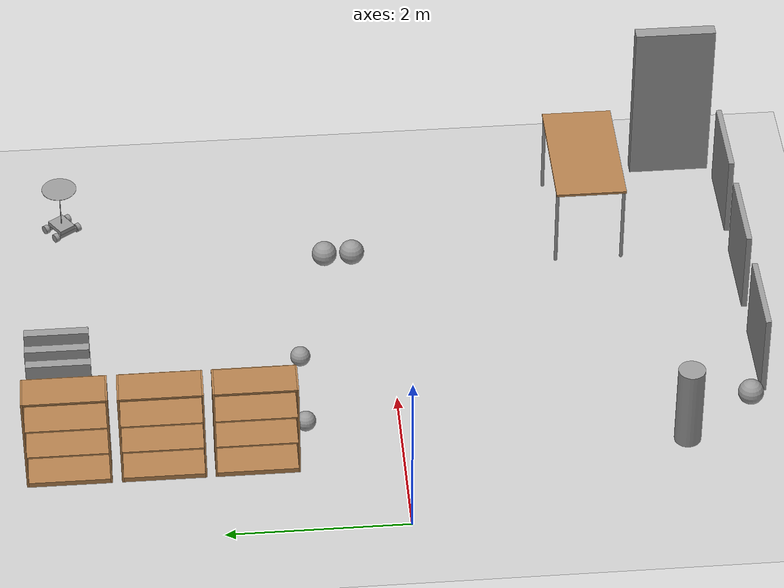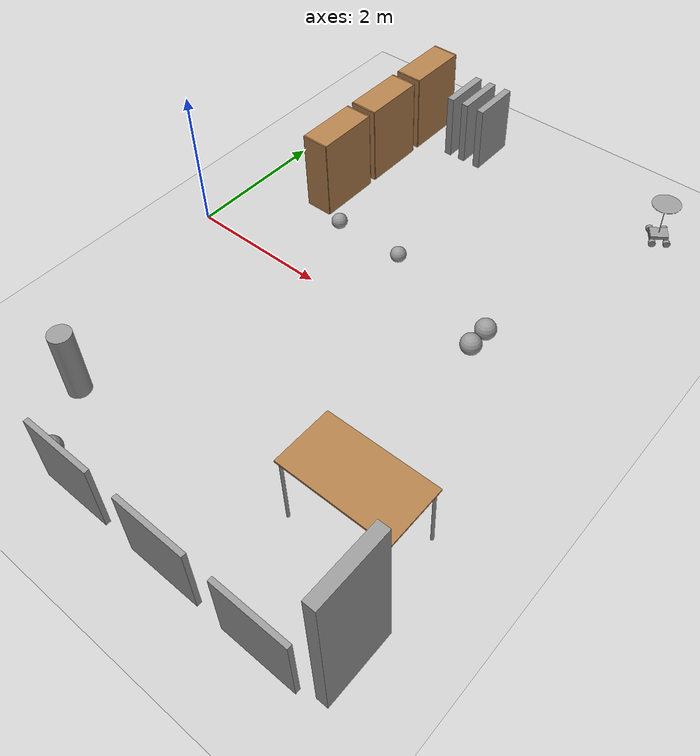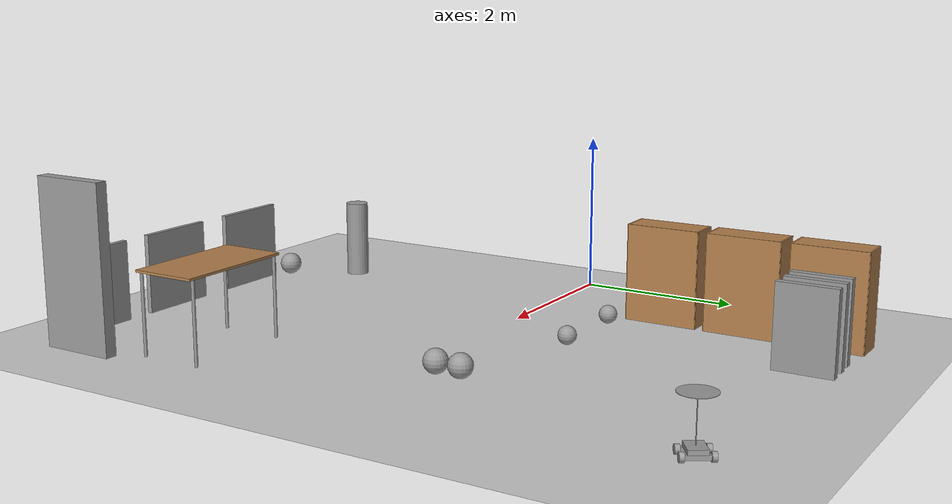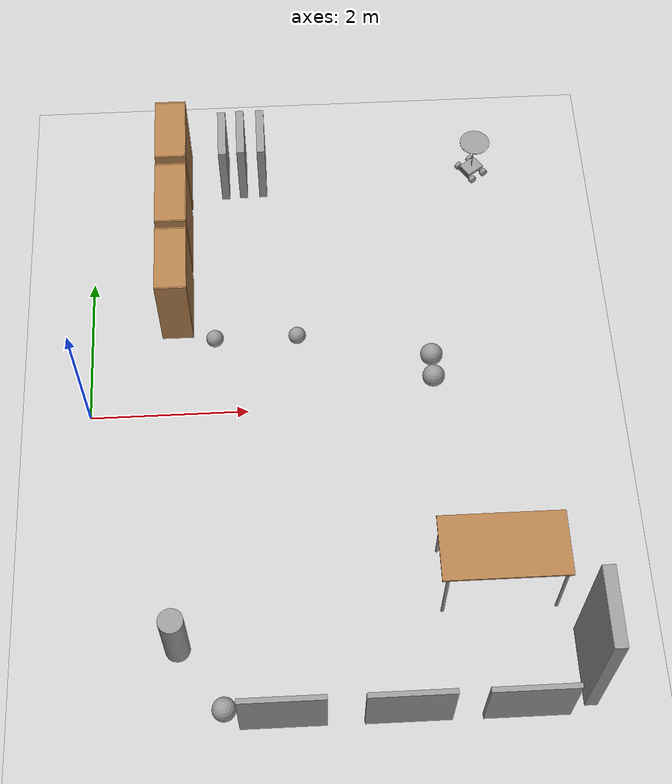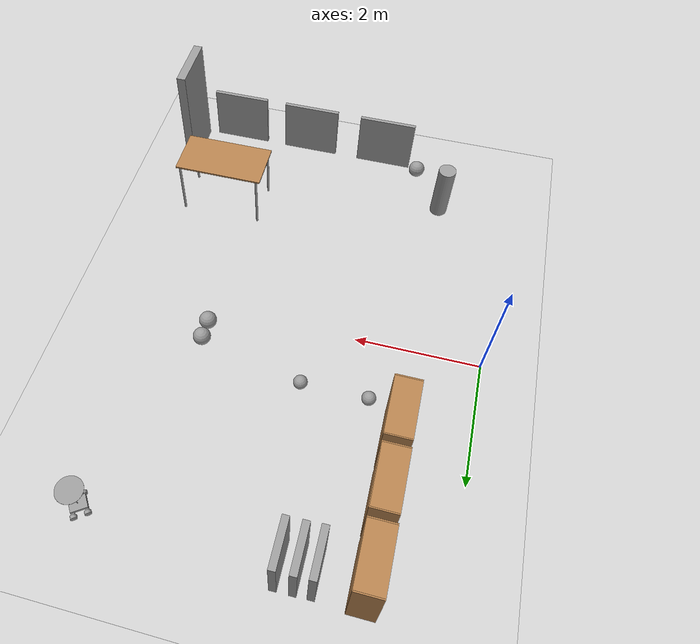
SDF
<sdf version="1.6">
 <world name="default">
  <model name="ground_plane">
   <static>1</static>
   <link name="link">
    <collision name="collision">
     <geometry><plane><normal>0 0 1</normal><size>100 100</size></plane></geometry>
     <surface><friction><ode><mu>100</mu><mu2>50</mu2></ode></friction></surface>
    </collision>
    <visual name="visual">
     <cast_shadows>0</cast_shadows>
     <geometry><plane><normal>0 0 1</normal><size>100 100</size></plane></geometry>
     <material>
      <script><uri>file://media/materials/scripts/gazebo.material</uri><name>Gazebo/Grey</name></script>
     </material>
    </visual>
   </link>
  </model>
  <model name="bookshelf">
   <static>1</static>
   <link name="link">
    <inertial><mass>1</mass></inertial>
    <collision name="back">
     <pose>0 0.005 0.6 0 -0 0</pose>
     <geometry><box><size>0.9 0.01 1.2</size></box></geometry>
    </collision>
    <visual name="visual1">
     <pose>0 0.005 0.6 0 -0 0</pose>
     <geometry><box><size>0.9 0.01 1.2</size></box></geometry>
     <material>
      <script><uri>file://media/materials/scripts/gazebo.material</uri><name>Gazebo/Wood</name></script>
     </material>
    </visual>
    <collision name="left_side">
     <pose>0.45 -0.195 0.6 0 -0 0</pose>
     <geometry><box><size>0.02 0.4 1.2</size></box></geometry>
    </collision>
    <visual name="visual2">
     <pose>0.45 -0.195 0.6 0 -0 0</pose>
     <geometry><box><size>0.02 0.4 1.2</size></box></geometry>
     <material>
      <script><uri>file://media/materials/scripts/gazebo.material</uri><name>Gazebo/Wood</name></script>
     </material>
    </visual>
    <collision name="right_side">
     <pose>-0.45 -0.195 0.6 0 -0 0</pose>
     <geometry><box><size>0.02 0.4 1.2</size></box></geometry>
    </collision>
    <visual name="visual3">
     <pose>-0.45 -0.195 0.6 0 -0 0</pose>
     <geometry><box><size>0.02 0.4 1.2</size></box></geometry>
     <material>
      <script><uri>file://media/materials/scripts/gazebo.material</uri><name>Gazebo/Wood</name></script>
     </material>
    </visual>
    <collision name="bottom">
     <pose>0 -0.195 0.03 0 -0 0</pose>
     <geometry><box><size>0.88 0.4 0.06</size></box></geometry>
    </collision>
    <visual name="visual4">
     <pose>0 -0.195 0.03 0 -0 0</pose>
     <geometry><box><size>0.88 0.4 0.06</size></box></geometry>
     <material>
      <script><uri>file://media/materials/scripts/gazebo.material</uri><name>Gazebo/Wood</name></script>
     </material>
    </visual>
    <collision name="top">
     <pose>0 -0.195 1.19 0 -0 0</pose>
     <geometry><box><size>0.88 0.4 0.02</size></box></geometry>
    </collision>
    <visual name="visual5">
     <pose>0 -0.195 1.19 0 -0 0</pose>
     <geometry><box><size>0.88 0.4 0.02</size></box></geometry>
     <material>
      <script><uri>file://media/materials/scripts/gazebo.material</uri><name>Gazebo/Wood</name></script>
     </material>
    </visual>
    <collision name="low_shelf">
     <pose>0 -0.195 0.43 0 -0 0</pose>
     <geometry><box><size>0.88 0.4 0.02</size></box></geometry>
    </collision>
    <visual name="visual6">
     <pose>0 -0.195 0.43 0 -0 0</pose>
     <geometry><box><size>0.88 0.4 0.02</size></box></geometry>
     <material>
      <script><uri>file://media/materials/scripts/gazebo.material</uri><name>Gazebo/Wood</name></script>
     </material>
    </visual>
    <collision name="high_shelf">
     <pose>0 -0.195 0.8 0 -0 0</pose>
     <geometry><box><size>0.88 0.4 0.02</size></box></geometry>
    </collision>
    <visual name="visual7">
     <pose>0 -0.195 0.8 0 -0 0</pose>
     <geometry><box><size>0.88 0.4 0.02</size></box></geometry>
     <material>
      <script><uri>file://media/materials/scripts/gazebo.material</uri><name>Gazebo/Wood</name></script>
     </material>
    </visual>
   </link>
   <pose>1.3 3.63049 0 0 0 -1.57119</pose>
  </model>
  <model name="bookshelf_clone">
   <static>1</static>
   <link name="link">
    <inertial><mass>1</mass></inertial>
    <collision name="back">
     <pose>0 0.005 0.6 0 -0 0</pose>
     <geometry><box><size>0.9 0.01 1.2</size></box></geometry>
    </collision>
    <visual name="visual1">
     <pose>0 0.005 0.6 0 -0 0</pose>
     <geometry><box><size>0.9 0.01 1.2</size></box></geometry>
     <material>
      <script><uri>file://media/materials/scripts/gazebo.material</uri><name>Gazebo/Wood</name></script>
     </material>
    </visual>
    <collision name="left_side">
     <pose>0.45 -0.195 0.6 0 -0 0</pose>
     <geometry><box><size>0.02 0.4 1.2</size></box></geometry>
    </collision>
    <visual name="visual2">
     <pose>0.45 -0.195 0.6 0 -0 0</pose>
     <geometry><box><size>0.02 0.4 1.2</size></box></geometry>
     <material>
      <script><uri>file://media/materials/scripts/gazebo.material</uri><name>Gazebo/Wood</name></script>
     </material>
    </visual>
    <collision name="right_side">
     <pose>-0.45 -0.195 0.6 0 -0 0</pose>
     <geometry><box><size>0.02 0.4 1.2</size></box></geometry>
    </collision>
    <visual name="visual3">
     <pose>-0.45 -0.195 0.6 0 -0 0</pose>
     <geometry><box><size>0.02 0.4 1.2</size></box></geometry>
     <material>
      <script><uri>file://media/materials/scripts/gazebo.material</uri><name>Gazebo/Wood</name></script>
     </material>
    </visual>
    <collision name="bottom">
     <pose>0 -0.195 0.03 0 -0 0</pose>
     <geometry><box><size>0.88 0.4 0.06</size></box></geometry>
    </collision>
    <visual name="visual4">
     <pose>0 -0.195 0.03 0 -0 0</pose>
     <geometry><box><size>0.88 0.4 0.06</size></box></geometry>
     <material>
      <script><uri>file://media/materials/scripts/gazebo.material</uri><name>Gazebo/Wood</name></script>
     </material>
    </visual>
    <collision name="top">
     <pose>0 -0.195 1.19 0 -0 0</pose>
     <geometry><box><size>0.88 0.4 0.02</size></box></geometry>
    </collision>
    <visual name="visual5">
     <pose>0 -0.195 1.19 0 -0 0</pose>
     <geometry><box><size>0.88 0.4 0.02</size></box></geometry>
     <material>
      <script><uri>file://media/materials/scripts/gazebo.material</uri><name>Gazebo/Wood</name></script>
     </material>
    </visual>
    <collision name="low_shelf">
     <pose>0 -0.195 0.43 0 -0 0</pose>
     <geometry><box><size>0.88 0.4 0.02</size></box></geometry>
    </collision>
    <visual name="visual6">
     <pose>0 -0.195 0.43 0 -0 0</pose>
     <geometry><box><size>0.88 0.4 0.02</size></box></geometry>
     <material>
      <script><uri>file://media/materials/scripts/gazebo.material</uri><name>Gazebo/Wood</name></script>
     </material>
    </visual>
    <collision name="high_shelf">
     <pose>0 -0.195 0.8 0 -0 0</pose>
     <geometry><box><size>0.88 0.4 0.02</size></box></geometry>
    </collision>
    <visual name="visual7">
     <pose>0 -0.195 0.8 0 -0 0</pose>
     <geometry><box><size>0.88 0.4 0.02</size></box></geometry>
     <material>
      <script><uri>file://media/materials/scripts/gazebo.material</uri><name>Gazebo/Wood</name></script>
     </material>
    </visual>
   </link>
   <pose>1.30004 2.60838 0 0 0 -1.57119</pose>
  </model>
  <model name="bookshelf_clone_0">
   <static>1</static>
   <link name="link">
    <inertial><mass>1</mass></inertial>
    <collision name="back">
     <pose>0 0.005 0.6 0 -0 0</pose>
     <geometry><box><size>0.9 0.01 1.2</size></box></geometry>
    </collision>
    <visual name="visual1">
     <pose>0 0.005 0.6 0 -0 0</pose>
     <geometry><box><size>0.9 0.01 1.2</size></box></geometry>
     <material>
      <script><uri>file://media/materials/scripts/gazebo.material</uri><name>Gazebo/Wood</name></script>
     </material>
    </visual>
    <collision name="left_side">
     <pose>0.45 -0.195 0.6 0 -0 0</pose>
     <geometry><box><size>0.02 0.4 1.2</size></box></geometry>
    </collision>
    <visual name="visual2">
     <pose>0.45 -0.195 0.6 0 -0 0</pose>
     <geometry><box><size>0.02 0.4 1.2</size></box></geometry>
     <material>
      <script><uri>file://media/materials/scripts/gazebo.material</uri><name>Gazebo/Wood</name></script>
     </material>
    </visual>
    <collision name="right_side">
     <pose>-0.45 -0.195 0.6 0 -0 0</pose>
     <geometry><box><size>0.02 0.4 1.2</size></box></geometry>
    </collision>
    <visual name="visual3">
     <pose>-0.45 -0.195 0.6 0 -0 0</pose>
     <geometry><box><size>0.02 0.4 1.2</size></box></geometry>
     <material>
      <script><uri>file://media/materials/scripts/gazebo.material</uri><name>Gazebo/Wood</name></script>
     </material>
    </visual>
    <collision name="bottom">
     <pose>0 -0.195 0.03 0 -0 0</pose>
     <geometry><box><size>0.88 0.4 0.06</size></box></geometry>
    </collision>
    <visual name="visual4">
     <pose>0 -0.195 0.03 0 -0 0</pose>
     <geometry><box><size>0.88 0.4 0.06</size></box></geometry>
     <material>
      <script><uri>file://media/materials/scripts/gazebo.material</uri><name>Gazebo/Wood</name></script>
     </material>
    </visual>
    <collision name="top">
     <pose>0 -0.195 1.19 0 -0 0</pose>
     <geometry><box><size>0.88 0.4 0.02</size></box></geometry>
    </collision>
    <visual name="visual5">
     <pose>0 -0.195 1.19 0 -0 0</pose>
     <geometry><box><size>0.88 0.4 0.02</size></box></geometry>
     <material>
      <script><uri>file://media/materials/scripts/gazebo.material</uri><name>Gazebo/Wood</name></script>
     </material>
    </visual>
    <collision name="low_shelf">
     <pose>0 -0.195 0.43 0 -0 0</pose>
     <geometry><box><size>0.88 0.4 0.02</size></box></geometry>
    </collision>
    <visual name="visual6">
     <pose>0 -0.195 0.43 0 -0 0</pose>
     <geometry><box><size>0.88 0.4 0.02</size></box></geometry>
     <material>
      <script><uri>file://media/materials/scripts/gazebo.material</uri><name>Gazebo/Wood</name></script>
     </material>
    </visual>
    <collision name="high_shelf">
     <pose>0 -0.195 0.8 0 -0 0</pose>
     <geometry><box><size>0.88 0.4 0.02</size></box></geometry>
    </collision>
    <visual name="visual7">
     <pose>0 -0.195 0.8 0 -0 0</pose>
     <geometry><box><size>0.88 0.4 0.02</size></box></geometry>
     <material>
      <script><uri>file://media/materials/scripts/gazebo.material</uri><name>Gazebo/Wood</name></script>
     </material>
    </visual>
   </link>
   <pose>1.30003 1.59548 0 0 0 -1.57119</pose>
  </model>
  <model name="table_clone">
   <static>1</static>
   <link name="link">
    <collision name="surface">
     <pose>0 0 1 0 -0 0</pose>
     <geometry><box><size>1.5 0.8 0.03</size></box></geometry>
     <surface><friction><ode><mu>0.6</mu><mu2>0.6</mu2></ode></friction></surface>
    </collision>
    <visual name="visual1">
     <pose>0 0 1 0 -0 0</pose>
     <geometry><box><size>1.5 0.8 0.03</size></box></geometry>
     <material>
      <script><uri>file://media/materials/scripts/gazebo.material</uri><name>Gazebo/Wood</name></script>
     </material>
    </visual>
    <collision name="front_left_leg">
     <pose>0.68 0.38 0.5 0 -0 0</pose>
     <geometry><cylinder><radius>0.02</radius><length>1</length></cylinder></geometry>
    </collision>
    <visual name="front_left_leg">
     <pose>0.68 0.38 0.5 0 -0 0</pose>
     <geometry><cylinder><radius>0.02</radius><length>1</length></cylinder></geometry>
     <material>
      <script><uri>file://media/materials/scripts/gazebo.material</uri><name>Gazebo/Grey</name></script>
     </material>
    </visual>
    <collision name="front_right_leg">
     <pose>0.68 -0.38 0.5 0 -0 0</pose>
     <geometry><cylinder><radius>0.02</radius><length>1</length></cylinder></geometry>
    </collision>
    <visual name="front_right_leg">
     <pose>0.68 -0.38 0.5 0 -0 0</pose>
     <geometry><cylinder><radius>0.02</radius><length>1</length></cylinder></geometry>
     <material>
      <script><uri>file://media/materials/scripts/gazebo.material</uri><name>Gazebo/Grey</name></script>
     </material>
    </visual>
    <collision name="back_right_leg">
     <pose>-0.68 -0.38 0.5 0 -0 0</pose>
     <geometry><cylinder><radius>0.02</radius><length>1</length></cylinder></geometry>
    </collision>
    <visual name="back_right_leg">
     <pose>-0.68 -0.38 0.5 0 -0 0</pose>
     <geometry><cylinder><radius>0.02</radius><length>1</length></cylinder></geometry>
     <material>
      <script><uri>file://media/materials/scripts/gazebo.material</uri><name>Gazebo/Grey</name></script>
     </material>
    </visual>
    <collision name="back_left_leg">
     <pose>-0.68 0.38 0.5 0 -0 0</pose>
     <geometry><cylinder><radius>0.02</radius><length>1</length></cylinder></geometry>
    </collision>
    <visual name="back_left_leg">
     <pose>-0.68 0.38 0.5 0 -0 0</pose>
     <geometry><cylinder><radius>0.02</radius><length>1</length></cylinder></geometry>
     <material>
      <script><uri>file://media/materials/scripts/gazebo.material</uri><name>Gazebo/Grey</name></script>
     </material>
    </visual>
   </link>
   <pose>4.9 -2.4 0 0 -0 0</pose>
  </model>
  <model name="carry-o-matic_0">
   <link name="link_0">
    <pose>0.1 -0 -0.049667 0 -0 0</pose>
    <inertial>
     <mass>1</mass>
     <inertia>
      <ixx>0.166667</ixx>
      <ixy>0</ixy>
      <ixz>0</ixz>
      <iyy>0.166667</iyy>
      <iyz>0</iyz>
      <izz>0.166667</izz>
     </inertia>
    </inertial>
    <visual name="visual">
     <geometry><box><size>0.05 0.25 0.05</size></box></geometry>
     <material>
      <lighting>1</lighting>
      <script><uri>file://media/materials/scripts/gazebo.material</uri><name>Gazebo/Grey</name></script>
      <ambient>0.3 0.3 0.3 1</ambient>
      <diffuse>0.7 0.7 0.7 1</diffuse>
      <specular>0.01 0.01 0.01 1</specular>
      <emissive>0 0 0 1</emissive>
      <shader type="vertex"><normal_map>__default__</normal_map></shader>
     </material>
    </visual>
    <collision name="collision">
     <geometry><box><size>0.05 0.25 0.05</size></box></geometry>
     <surface>
      <friction>
       <ode><mu>1</mu><mu2>1</mu2><fdir1>0 0 0</fdir1><slip1>0</slip1><slip2>0</slip2></ode>
       <torsional>
        <coefficient>1</coefficient>
        <patch_radius>0</patch_radius>
        <surface_radius>0</surface_radius>
        <use_patch_radius>1</use_patch_radius>
        <ode><slip>0</slip></ode>
       </torsional>
      </friction>
      <bounce><restitution_coefficient>0</restitution_coefficient><threshold>1e+06</threshold></bounce>
      <contact>
       <collide_without_contact>0</collide_without_contact>
       <collide_without_contact_bitmask>1</collide_without_contact_bitmask>
       <collide_bitmask>1</collide_bitmask>
       <ode>
        <soft_cfm>0</soft_cfm>
        <soft_erp>0.2</soft_erp>
        <kp>1e+13</kp>
        <kd>1</kd>
        <max_vel>0.01</max_vel>
        <min_depth>0</min_depth>
       </ode>
       <bullet>
        <split_impulse>1</split_impulse>
        <split_impulse_penetration_threshold>-0.01</split_impulse_penetration_threshold>
        <soft_cfm>0</soft_cfm>
        <soft_erp>0.2</soft_erp>
        <kp>1e+13</kp>
        <kd>1</kd>
       </bullet>
      </contact>
     </surface>
    </collision>
   </link>
   <link name="link_0_clone">
    <pose>-0.1 -0 -0.049667 0 -0 0</pose>
    <inertial>
     <mass>1</mass>
     <inertia>
      <ixx>0.166667</ixx>
      <ixy>0</ixy>
      <ixz>0</ixz>
      <iyy>0.166667</iyy>
      <iyz>0</iyz>
      <izz>0.166667</izz>
     </inertia>
    </inertial>
    <visual name="visual">
     <geometry><box><size>0.05 0.25 0.05</size></box></geometry>
     <material>
      <lighting>1</lighting>
      <script><uri>file://media/materials/scripts/gazebo.material</uri><name>Gazebo/Grey</name></script>
      <ambient>0.3 0.3 0.3 1</ambient>
      <diffuse>0.7 0.7 0.7 1</diffuse>
      <specular>0.01 0.01 0.01 1</specular>
      <emissive>0 0 0 1</emissive>
      <shader type="vertex"><normal_map>__default__</normal_map></shader>
     </material>
    </visual>
    <collision name="collision">
     <geometry><box><size>0.05 0.25 0.05</size></box></geometry>
     <surface>
      <friction>
       <ode><mu>1</mu><mu2>1</mu2><fdir1>0 0 0</fdir1><slip1>0</slip1><slip2>0</slip2></ode>
       <torsional>
        <coefficient>1</coefficient>
        <patch_radius>0</patch_radius>
        <surface_radius>0</surface_radius>
        <use_patch_radius>1</use_patch_radius>
        <ode><slip>0</slip></ode>
       </torsional>
      </friction>
      <bounce><restitution_coefficient>0</restitution_coefficient><threshold>1e+06</threshold></bounce>
      <contact>
       <collide_without_contact>0</collide_without_contact>
       <collide_without_contact_bitmask>1</collide_without_contact_bitmask>
       <collide_bitmask>1</collide_bitmask>
       <ode>
        <soft_cfm>0</soft_cfm>
        <soft_erp>0.2</soft_erp>
        <kp>1e+13</kp>
        <kd>1</kd>
        <max_vel>0.01</max_vel>
        <min_depth>0</min_depth>
       </ode>
       <bullet>
        <split_impulse>1</split_impulse>
        <split_impulse_penetration_threshold>-0.01</split_impulse_penetration_threshold>
        <soft_cfm>0</soft_cfm>
        <soft_erp>0.2</soft_erp>
        <kp>1e+13</kp>
        <kd>1</kd>
       </bullet>
      </contact>
     </surface>
    </collision>
   </link>
   <link name="link_1">
    <pose>0.1 -0.150013 -0.049667 1.5707 -0 0</pose>
    <inertial>
     <mass>1</mass>
     <inertia><ixx>0.145833</ixx><ixy>0</ixy><ixz>0</ixz><iyy>0.145833</iyy><iyz>0</iyz><izz>0.125</izz></inertia>
    </inertial>
    <visual name="visual">
     <geometry><cylinder><radius>0.05</radius><length>0.05</length></cylinder></geometry>
     <material>
      <lighting>1</lighting>
      <script><uri>file://media/materials/scripts/gazebo.material</uri><name>Gazebo/Grey</name></script>
      <ambient>0.3 0.3 0.3 1</ambient>
      <diffuse>0.7 0.7 0.7 1</diffuse>
      <specular>0.01 0.01 0.01 1</specular>
      <emissive>0 0 0 1</emissive>
      <shader type="vertex"><normal_map>__default__</normal_map></shader>
     </material>
    </visual>
    <collision name="collision">
     <geometry><cylinder><radius>0.05</radius><length>0.05</length></cylinder></geometry>
     <surface>
      <friction>
       <ode><mu>1</mu><mu2>1</mu2><fdir1>0 0 0</fdir1><slip1>0</slip1><slip2>0</slip2></ode>
       <torsional>
        <coefficient>1</coefficient>
        <patch_radius>0</patch_radius>
        <surface_radius>0</surface_radius>
        <use_patch_radius>1</use_patch_radius>
        <ode><slip>0</slip></ode>
       </torsional>
      </friction>
      <bounce><restitution_coefficient>0</restitution_coefficient><threshold>1e+06</threshold></bounce>
      <contact>
       <collide_without_contact>0</collide_without_contact>
       <collide_without_contact_bitmask>1</collide_without_contact_bitmask>
       <collide_bitmask>1</collide_bitmask>
       <ode>
        <soft_cfm>0</soft_cfm>
        <soft_erp>0.2</soft_erp>
        <kp>1e+13</kp>
        <kd>1</kd>
        <max_vel>0.01</max_vel>
        <min_depth>0</min_depth>
       </ode>
       <bullet>
        <split_impulse>1</split_impulse>
        <split_impulse_penetration_threshold>-0.01</split_impulse_penetration_threshold>
        <soft_cfm>0</soft_cfm>
        <soft_erp>0.2</soft_erp>
        <kp>1e+13</kp>
        <kd>1</kd>
       </bullet>
      </contact>
     </surface>
    </collision>
   </link>
   <link name="link_1_clone">
    <pose>0.1 0.15 -0.049667 1.5707 -0 0</pose>
    <inertial>
     <mass>1</mass>
     <inertia><ixx>0.145833</ixx><ixy>0</ixy><ixz>0</ixz><iyy>0.145833</iyy><iyz>0</iyz><izz>0.125</izz></inertia>
    </inertial>
    <visual name="visual">
     <geometry><cylinder><radius>0.05</radius><length>0.05</length></cylinder></geometry>
     <material>
      <lighting>1</lighting>
      <script><uri>file://media/materials/scripts/gazebo.material</uri><name>Gazebo/Grey</name></script>
      <ambient>0.3 0.3 0.3 1</ambient>
      <diffuse>0.7 0.7 0.7 1</diffuse>
      <specular>0.01 0.01 0.01 1</specular>
      <emissive>0 0 0 1</emissive>
      <shader type="vertex"><normal_map>__default__</normal_map></shader>
     </material>
    </visual>
    <collision name="collision">
     <geometry><cylinder><radius>0.05</radius><length>0.05</length></cylinder></geometry>
     <surface>
      <friction>
       <ode><mu>1</mu><mu2>1</mu2><fdir1>0 0 0</fdir1><slip1>0</slip1><slip2>0</slip2></ode>
       <torsional>
        <coefficient>1</coefficient>
        <patch_radius>0</patch_radius>
        <surface_radius>0</surface_radius>
        <use_patch_radius>1</use_patch_radius>
        <ode><slip>0</slip></ode>
       </torsional>
      </friction>
      <bounce><restitution_coefficient>0</restitution_coefficient><threshold>1e+06</threshold></bounce>
      <contact>
       <collide_without_contact>0</collide_without_contact>
       <collide_without_contact_bitmask>1</collide_without_contact_bitmask>
       <collide_bitmask>1</collide_bitmask>
       <ode>
        <soft_cfm>0</soft_cfm>
        <soft_erp>0.2</soft_erp>
        <kp>1e+13</kp>
        <kd>1</kd>
        <max_vel>0.01</max_vel>
        <min_depth>0</min_depth>
       </ode>
       <bullet>
        <split_impulse>1</split_impulse>
        <split_impulse_penetration_threshold>-0.01</split_impulse_penetration_threshold>
        <soft_cfm>0</soft_cfm>
        <soft_erp>0.2</soft_erp>
        <kp>1e+13</kp>
        <kd>1</kd>
       </bullet>
      </contact>
     </surface>
    </collision>
   </link>
   <link name="link_1_clone_0">
    <pose>-0.1 -0.150005 -0.049667 1.5707 -0 0</pose>
    <inertial>
     <mass>1</mass>
     <inertia><ixx>0.145833</ixx><ixy>0</ixy><ixz>0</ixz><iyy>0.145833</iyy><iyz>0</iyz><izz>0.125</izz></inertia>
    </inertial>
    <visual name="visual">
     <geometry><cylinder><radius>0.05</radius><length>0.05</length></cylinder></geometry>
     <material>
      <lighting>1</lighting>
      <script><uri>file://media/materials/scripts/gazebo.material</uri><name>Gazebo/Grey</name></script>
      <ambient>0.3 0.3 0.3 1</ambient>
      <diffuse>0.7 0.7 0.7 1</diffuse>
      <specular>0.01 0.01 0.01 1</specular>
      <emissive>0 0 0 1</emissive>
      <shader type="vertex"><normal_map>__default__</normal_map></shader>
     </material>
    </visual>
    <collision name="collision">
     <geometry><cylinder><radius>0.05</radius><length>0.05</length></cylinder></geometry>
     <surface>
      <friction>
       <ode><mu>1</mu><mu2>1</mu2><fdir1>0 0 0</fdir1><slip1>0</slip1><slip2>0</slip2></ode>
       <torsional>
        <coefficient>1</coefficient>
        <patch_radius>0</patch_radius>
        <surface_radius>0</surface_radius>
        <use_patch_radius>1</use_patch_radius>
        <ode><slip>0</slip></ode>
       </torsional>
      </friction>
      <bounce><restitution_coefficient>0</restitution_coefficient><threshold>1e+06</threshold></bounce>
      <contact>
       <collide_without_contact>0</collide_without_contact>
       <collide_without_contact_bitmask>1</collide_without_contact_bitmask>
       <collide_bitmask>1</collide_bitmask>
       <ode>
        <soft_cfm>0</soft_cfm>
        <soft_erp>0.2</soft_erp>
        <kp>1e+13</kp>
        <kd>1</kd>
        <max_vel>0.01</max_vel>
        <min_depth>0</min_depth>
       </ode>
       <bullet>
        <split_impulse>1</split_impulse>
        <split_impulse_penetration_threshold>-0.01</split_impulse_penetration_threshold>
        <soft_cfm>0</soft_cfm>
        <soft_erp>0.2</soft_erp>
        <kp>1e+13</kp>
        <kd>1</kd>
       </bullet>
      </contact>
     </surface>
    </collision>
   </link>
   <link name="link_1_clone_1">
    <pose>-0.1 0.150005 -0.049667 1.5707 -0 0</pose>
    <inertial>
     <mass>1</mass>
     <inertia><ixx>0.145833</ixx><ixy>0</ixy><ixz>0</ixz><iyy>0.145833</iyy><iyz>0</iyz><izz>0.125</izz></inertia>
    </inertial>
    <visual name="visual">
     <geometry><cylinder><radius>0.05</radius><length>0.05</length></cylinder></geometry>
     <material>
      <lighting>1</lighting>
      <script><uri>file://media/materials/scripts/gazebo.material</uri><name>Gazebo/Grey</name></script>
      <ambient>0.3 0.3 0.3 1</ambient>
      <diffuse>0.7 0.7 0.7 1</diffuse>
      <specular>0.01 0.01 0.01 1</specular>
      <emissive>0 0 0 1</emissive>
      <shader type="vertex"><normal_map>__default__</normal_map></shader>
     </material>
    </visual>
    <collision name="collision">
     <geometry><cylinder><radius>0.05</radius><length>0.05</length></cylinder></geometry>
     <surface>
      <friction>
       <ode><mu>1</mu><mu2>1</mu2><fdir1>0 0 0</fdir1><slip1>0</slip1><slip2>0</slip2></ode>
       <torsional>
        <coefficient>1</coefficient>
        <patch_radius>0</patch_radius>
        <surface_radius>0</surface_radius>
        <use_patch_radius>1</use_patch_radius>
        <ode><slip>0</slip></ode>
       </torsional>
      </friction>
      <bounce><restitution_coefficient>0</restitution_coefficient><threshold>1e+06</threshold></bounce>
      <contact>
       <collide_without_contact>0</collide_without_contact>
       <collide_without_contact_bitmask>1</collide_without_contact_bitmask>
       <collide_bitmask>1</collide_bitmask>
       <ode>
        <soft_cfm>0</soft_cfm>
        <soft_erp>0.2</soft_erp>
        <kp>1e+13</kp>
        <kd>1</kd>
        <max_vel>0.01</max_vel>
        <min_depth>0</min_depth>
       </ode>
       <bullet>
        <split_impulse>1</split_impulse>
        <split_impulse_penetration_threshold>-0.01</split_impulse_penetration_threshold>
        <soft_cfm>0</soft_cfm>
        <soft_erp>0.2</soft_erp>
        <kp>1e+13</kp>
        <kd>1</kd>
       </bullet>
      </contact>
     </surface>
    </collision>
   </link>
   <link name="link_2">
    <pose>0 -0 0.000333 0 -0 0</pose>
    <inertial>
     <mass>1</mass>
     <inertia>
      <ixx>0.166667</ixx>
      <ixy>0</ixy>
      <ixz>0</ixz>
      <iyy>0.166667</iyy>
      <iyz>0</iyz>
      <izz>0.166667</izz>
     </inertia>
    </inertial>
    <visual name="visual">
     <geometry><box><size>0.25 0.2 0.05</size></box></geometry>
     <material>
      <lighting>1</lighting>
      <script><uri>file://media/materials/scripts/gazebo.material</uri><name>Gazebo/Grey</name></script>
      <ambient>0.3 0.3 0.3 1</ambient>
      <diffuse>0.7 0.7 0.7 1</diffuse>
      <specular>0.01 0.01 0.01 1</specular>
      <emissive>0 0 0 1</emissive>
      <shader type="vertex"><normal_map>__default__</normal_map></shader>
     </material>
    </visual>
    <collision name="collision">
     <geometry><box><size>0.25 0.2 0.05</size></box></geometry>
     <surface>
      <friction>
       <ode><mu>1</mu><mu2>1</mu2><fdir1>0 0 0</fdir1><slip1>0</slip1><slip2>0</slip2></ode>
       <torsional>
        <coefficient>1</coefficient>
        <patch_radius>0</patch_radius>
        <surface_radius>0</surface_radius>
        <use_patch_radius>1</use_patch_radius>
        <ode><slip>0</slip></ode>
       </torsional>
      </friction>
      <bounce><restitution_coefficient>0</restitution_coefficient><threshold>1e+06</threshold></bounce>
      <contact>
       <collide_without_contact>0</collide_without_contact>
       <collide_without_contact_bitmask>1</collide_without_contact_bitmask>
       <collide_bitmask>1</collide_bitmask>
       <ode>
        <soft_cfm>0</soft_cfm>
        <soft_erp>0.2</soft_erp>
        <kp>1e+13</kp>
        <kd>1</kd>
        <max_vel>0.01</max_vel>
        <min_depth>0</min_depth>
       </ode>
       <bullet>
        <split_impulse>1</split_impulse>
        <split_impulse_penetration_threshold>-0.01</split_impulse_penetration_threshold>
        <soft_cfm>0</soft_cfm>
        <soft_erp>0.2</soft_erp>
        <kp>1e+13</kp>
        <kd>1</kd>
       </bullet>
      </contact>
     </surface>
    </collision>
   </link>
   <link name="link_3">
    <pose>0 -2e-06 0.277476 0 -0 0</pose>
    <inertial>
     <mass>1</mass>
     <inertia><ixx>0.145833</ixx><ixy>0</ixy><ixz>0</ixz><iyy>0.145833</iyy><iyz>0</iyz><izz>0.125</izz></inertia>
    </inertial>
    <visual name="visual">
     <geometry><cylinder><radius>0.005</radius><length>0.5</length></cylinder></geometry>
     <material>
      <lighting>1</lighting>
      <script><uri>file://media/materials/scripts/gazebo.material</uri><name>Gazebo/Grey</name></script>
      <ambient>0.3 0.3 0.3 1</ambient>
      <diffuse>0.7 0.7 0.7 1</diffuse>
      <specular>0.01 0.01 0.01 1</specular>
      <emissive>0 0 0 1</emissive>
      <shader type="vertex"><normal_map>__default__</normal_map></shader>
     </material>
    </visual>
    <collision name="collision">
     <geometry><cylinder><radius>0.005</radius><length>0.5</length></cylinder></geometry>
     <surface>
      <friction>
       <ode><mu>1</mu><mu2>1</mu2><fdir1>0 0 0</fdir1><slip1>0</slip1><slip2>0</slip2></ode>
       <torsional>
        <coefficient>1</coefficient>
        <patch_radius>0</patch_radius>
        <surface_radius>0</surface_radius>
        <use_patch_radius>1</use_patch_radius>
        <ode><slip>0</slip></ode>
       </torsional>
      </friction>
      <bounce><restitution_coefficient>0</restitution_coefficient><threshold>1e+06</threshold></bounce>
      <contact>
       <collide_without_contact>0</collide_without_contact>
       <collide_without_contact_bitmask>1</collide_without_contact_bitmask>
       <collide_bitmask>1</collide_bitmask>
       <ode>
        <soft_cfm>0</soft_cfm>
        <soft_erp>0.2</soft_erp>
        <kp>1e+13</kp>
        <kd>1</kd>
        <max_vel>0.01</max_vel>
        <min_depth>0</min_depth>
       </ode>
       <bullet>
        <split_impulse>1</split_impulse>
        <split_impulse_penetration_threshold>-0.01</split_impulse_penetration_threshold>
        <soft_cfm>0</soft_cfm>
        <soft_erp>0.2</soft_erp>
        <kp>1e+13</kp>
        <kd>1</kd>
       </bullet>
      </contact>
     </surface>
    </collision>
   </link>
   <link name="link_4">
    <pose>0 -2e-06 0.534476 0 -0 0</pose>
    <inertial>
     <mass>1</mass>
     <inertia><ixx>0.145833</ixx><ixy>0</ixy><ixz>0</ixz><iyy>0.145833</iyy><iyz>0</iyz><izz>0.125</izz></inertia>
    </inertial>
    <visual name="visual">
     <geometry><cylinder><radius>0.2</radius><length>0.005</length></cylinder></geometry>
     <material>
      <lighting>1</lighting>
      <script><uri>file://media/materials/scripts/gazebo.material</uri><name>Gazebo/Grey</name></script>
      <ambient>0.3 0.3 0.3 1</ambient>
      <diffuse>0.7 0.7 0.7 1</diffuse>
      <specular>0.01 0.01 0.01 1</specular>
      <emissive>0 0 0 1</emissive>
      <shader type="vertex"><normal_map>__default__</normal_map></shader>
     </material>
    </visual>
    <collision name="collision">
     <geometry><cylinder><radius>0.2</radius><length>0.005</length></cylinder></geometry>
     <surface>
      <friction>
       <ode><mu>1</mu><mu2>1</mu2><fdir1>0 0 0</fdir1><slip1>0</slip1><slip2>0</slip2></ode>
       <torsional>
        <coefficient>1</coefficient>
        <patch_radius>0</patch_radius>
        <surface_radius>0</surface_radius>
        <use_patch_radius>1</use_patch_radius>
        <ode><slip>0</slip></ode>
       </torsional>
      </friction>
      <bounce><restitution_coefficient>0</restitution_coefficient><threshold>1e+06</threshold></bounce>
      <contact>
       <collide_without_contact>0</collide_without_contact>
       <collide_without_contact_bitmask>1</collide_without_contact_bitmask>
       <collide_bitmask>1</collide_bitmask>
       <ode>
        <soft_cfm>0</soft_cfm>
        <soft_erp>0.2</soft_erp>
        <kp>1e+13</kp>
        <kd>1</kd>
        <max_vel>0.01</max_vel>
        <min_depth>0</min_depth>
       </ode>
       <bullet>
        <split_impulse>1</split_impulse>
        <split_impulse_penetration_threshold>-0.01</split_impulse_penetration_threshold>
        <soft_cfm>0</soft_cfm>
        <soft_erp>0.2</soft_erp>
        <kp>1e+13</kp>
        <kd>1</kd>
       </bullet>
      </contact>
     </surface>
    </collision>
   </link>
   <joint name="link_0_JOINT_0" type="revolute">
    <parent>link_0</parent>
    <child>link_1</child>
    <axis>
     <xyz>0 0 1</xyz>
     <use_parent_model_frame>0</use_parent_model_frame>
     <limit>
      <lower>-1.79769e+308</lower>
      <upper>1.79769e+308</upper>
      <effort>-1</effort>
      <velocity>-1</velocity>
     </limit>
     <dynamics>
      <spring_reference>0</spring_reference>
      <spring_stiffness>0</spring_stiffness>
      <damping>0</damping>
     </dynamics>
    </axis>
    <physics>
     <ode><limit><cfm>0</cfm><erp>0.2</erp></limit><suspension><cfm>0</cfm><erp>0.2</erp></suspension></ode>
    </physics>
   </joint>
   <joint name="link_0_JOINT_1" type="revolute">
    <parent>link_0</parent>
    <child>link_1_clone</child>
    <axis>
     <xyz>0 0 1</xyz>
     <use_parent_model_frame>0</use_parent_model_frame>
     <limit>
      <lower>-1.79769e+308</lower>
      <upper>1.79769e+308</upper>
      <effort>-1</effort>
      <velocity>-1</velocity>
     </limit>
     <dynamics>
      <spring_reference>0</spring_reference>
      <spring_stiffness>0</spring_stiffness>
      <damping>0</damping>
     </dynamics>
    </axis>
    <physics>
     <ode><limit><cfm>0</cfm><erp>0.2</erp></limit><suspension><cfm>0</cfm><erp>0.2</erp></suspension></ode>
    </physics>
   </joint>
   <joint name="link_0_clone_JOINT_2" type="revolute">
    <parent>link_0_clone</parent>
    <child>link_1_clone_0</child>
    <axis>
     <xyz>0 0 1</xyz>
     <use_parent_model_frame>0</use_parent_model_frame>
     <limit>
      <lower>-1.79769e+308</lower>
      <upper>1.79769e+308</upper>
      <effort>-1</effort>
      <velocity>-1</velocity>
     </limit>
     <dynamics>
      <spring_reference>0</spring_reference>
      <spring_stiffness>0</spring_stiffness>
      <damping>0</damping>
     </dynamics>
    </axis>
    <physics>
     <ode><limit><cfm>0</cfm><erp>0.2</erp></limit><suspension><cfm>0</cfm><erp>0.2</erp></suspension></ode>
    </physics>
   </joint>
   <joint name="link_0_clone_JOINT_3" type="revolute">
    <parent>link_0_clone</parent>
    <child>link_1_clone_1</child>
    <axis>
     <xyz>0 0 1</xyz>
     <use_parent_model_frame>0</use_parent_model_frame>
     <limit>
      <lower>-1.79769e+308</lower>
      <upper>1.79769e+308</upper>
      <effort>-1</effort>
      <velocity>-1</velocity>
     </limit>
     <dynamics>
      <spring_reference>0</spring_reference>
      <spring_stiffness>0</spring_stiffness>
      <damping>0</damping>
     </dynamics>
    </axis>
    <physics>
     <ode><limit><cfm>0</cfm><erp>0.2</erp></limit><suspension><cfm>0</cfm><erp>0.2</erp></suspension></ode>
    </physics>
   </joint>
   <joint name="link_2_JOINT_4" type="fixed">
    <parent>link_2</parent>
    <child>link_0_clone</child>
    <physics>
     <ode><limit><cfm>0</cfm><erp>0.2</erp></limit><suspension><cfm>0</cfm><erp>0.2</erp></suspension></ode>
    </physics>
   </joint>
   <joint name="link_2_JOINT_5" type="fixed">
    <parent>link_2</parent>
    <child>link_0</child>
    <physics>
     <ode><limit><cfm>0</cfm><erp>0.2</erp></limit><suspension><cfm>0</cfm><erp>0.2</erp></suspension></ode>
    </physics>
   </joint>
   <joint name="link_2_JOINT_6" type="fixed">
    <parent>link_2</parent>
    <child>link_3</child>
    <physics>
     <ode><limit><cfm>0</cfm><erp>0.2</erp></limit><suspension><cfm>0</cfm><erp>0.2</erp></suspension></ode>
    </physics>
   </joint>
   <joint name="link_3_JOINT_7" type="fixed">
    <parent>link_3</parent>
    <child>link_4</child>
    <physics>
     <ode><limit><cfm>0</cfm><erp>0.2</erp></limit><suspension><cfm>0</cfm><erp>0.2</erp></suspension></ode>
    </physics>
   </joint>
   <static>0</static>
   <pose>5.18957 3.6528 0.09967 4e-06 2e-06 0.602781</pose>
  </model>
  <model name="door">
   <pose>5.81718 -3.54265 0 0 -0 0</pose>
   <link name="Wall_0">
    <collision name="Wall_0_Collision">
     <geometry><box><size>0.925 0.15 2</size></box></geometry>
     <pose>0 0 1 0 -0 0</pose>
    </collision>
    <visual name="Wall_0_Visual">
     <pose>0 0 1 0 -0 0</pose>
     <geometry><box><size>0.925 0.15 2</size></box></geometry>
     <material>
      <script><uri>file://media/materials/scripts/gazebo.material</uri><name>Gazebo/Grey</name></script>
      <ambient>1 1 1 1</ambient>
     </material>
     <meta><layer>0</layer></meta>
    </visual>
    <pose>0 0 0 0 -0 1.5708</pose>
   </link>
   <static>1</static>
  </model>
  <model name="unit_box_0_clone">
   <pose>3.72069 -4.06324 0.5 6e-06 -0 -2e-06</pose>
   <link name="link">
    <inertial>
     <mass>1</mass>
     <inertia>
      <ixx>0.166667</ixx>
      <ixy>0</ixy>
      <ixz>0</ixz>
      <iyy>0.166667</iyy>
      <iyz>0</iyz>
      <izz>0.166667</izz>
     </inertia>
    </inertial>
    <collision name="collision"><geometry><box><size>1 0.062572 1</size></box></geometry></collision>
    <visual name="visual">
     <geometry><box><size>1 0.062572 1</size></box></geometry>
     <material>
      <script><name>Gazebo/Grey</name><uri>file://media/materials/scripts/gazebo.material</uri></script>
     </material>
    </visual>
   </link>
  </model>
  <model name="unit_box_0_clone_clone">
   <pose>5.07134 -4.06871 0.5 -3e-06 -0 1e-06</pose>
   <link name="link">
    <inertial>
     <mass>1</mass>
     <inertia>
      <ixx>0.166667</ixx>
      <ixy>0</ixy>
      <ixz>0</ixz>
      <iyy>0.166667</iyy>
      <iyz>0</iyz>
      <izz>0.166667</izz>
     </inertia>
    </inertial>
    <collision name="collision"><geometry><box><size>1 0.062572 1</size></box></geometry></collision>
    <visual name="visual">
     <geometry><box><size>1 0.062572 1</size></box></geometry>
     <material>
      <script><name>Gazebo/Grey</name><uri>file://media/materials/scripts/gazebo.material</uri></script>
     </material>
    </visual>
   </link>
  </model>
  <model name="unit_box_0_clone_clone_0">
   <pose>2.29684 -4.05752 0.5 -3e-06 0 0</pose>
   <link name="link">
    <inertial>
     <mass>1</mass>
     <inertia>
      <ixx>0.166667</ixx>
      <ixy>0</ixy>
      <ixz>0</ixz>
      <iyy>0.166667</iyy>
      <iyz>0</iyz>
      <izz>0.166667</izz>
     </inertia>
    </inertial>
    <collision name="collision"><geometry><box><size>1 0.062572 1</size></box></geometry></collision>
    <visual name="visual">
     <geometry><box><size>1 0.062572 1</size></box></geometry>
     <material>
      <script><name>Gazebo/Grey</name><uri>file://media/materials/scripts/gazebo.material</uri></script>
     </material>
    </visual>
   </link>
  </model>
  <model name="unit_box">
   <pose>2.28414 3.7068 0.499991 0 -1.2e-05 6e-06</pose>
   <link name="link">
    <inertial>
     <mass>1</mass>
     <inertia>
      <ixx>0.166667</ixx>
      <ixy>0</ixy>
      <ixz>0</ixz>
      <iyy>0.166667</iyy>
      <iyz>0</iyz>
      <izz>0.166667</izz>
     </inertia>
    </inertial>
    <collision name="collision"><geometry><box><size>0.105011 0.705135 1</size></box></geometry></collision>
    <visual name="visual">
     <geometry><box><size>0.105011 0.705135 1</size></box></geometry>
     <material>
      <script><name>Gazebo/Grey</name><uri>file://media/materials/scripts/gazebo.material</uri></script>
     </material>
    </visual>
   </link>
  </model>
  <model name="unit_box_clone">
   <pose>1.77229 3.69221 0.5 0 -4e-06 -9e-06</pose>
   <link name="link">
    <inertial>
     <mass>1</mass>
     <inertia>
      <ixx>0.166667</ixx>
      <ixy>0</ixy>
      <ixz>0</ixz>
      <iyy>0.166667</iyy>
      <iyz>0</iyz>
      <izz>0.166667</izz>
     </inertia>
    </inertial>
    <collision name="collision"><geometry><box><size>0.105011 0.705135 1</size></box></geometry></collision>
    <visual name="visual">
     <geometry><box><size>0.105011 0.705135 1</size></box></geometry>
     <material>
      <script><name>Gazebo/Grey</name><uri>file://media/materials/scripts/gazebo.material</uri></script>
     </material>
    </visual>
   </link>
  </model>
  <model name="unit_box_clone_0">
   <pose>2.01639 3.70376 0.5 0 2e-06 9e-06</pose>
   <link name="link">
    <inertial>
     <mass>1</mass>
     <inertia>
      <ixx>0.166667</ixx>
      <ixy>0</ixy>
      <ixz>0</ixz>
      <iyy>0.166667</iyy>
      <iyz>0</iyz>
      <izz>0.166667</izz>
     </inertia>
    </inertial>
    <collision name="collision"><geometry><box><size>0.105011 0.705135 1</size></box></geometry></collision>
    <visual name="visual">
     <geometry><box><size>0.105011 0.705135 1</size></box></geometry>
     <material>
      <script><name>Gazebo/Grey</name><uri>file://media/materials/scripts/gazebo.material</uri></script>
     </material>
    </visual>
   </link>
  </model>
  <model name="unit_sphere">
   <pose>1.63002 -3.8873 0.143363 0 -0 0</pose>
   <link name="link">
    <inertial>
     <mass>1</mass>
     <inertia><ixx>0.1</ixx><ixy>0</ixy><ixz>0</ixz><iyy>0.1</iyy><iyz>0</iyz><izz>0.1</izz></inertia>
    </inertial>
    <collision name="collision"><geometry><sphere><radius>0.143364</radius></sphere></geometry></collision>
    <visual name="visual">
     <geometry><sphere><radius>0.143364</radius></sphere></geometry>
     <material>
      <script><name>Gazebo/Grey</name><uri>file://media/materials/scripts/gazebo.material</uri></script>
     </material>
    </visual>
   </link>
  </model>
  <model name="unit_sphere_clone">
   <pose>4.37493 0.644811 0.143363 0 -0 0</pose>
   <link name="link">
    <inertial>
     <mass>1</mass>
     <inertia><ixx>0.1</ixx><ixy>0</ixy><ixz>0</ixz><iyy>0.1</iyy><iyz>0</iyz><izz>0.1</izz></inertia>
    </inertial>
    <collision name="collision"><geometry><sphere><radius>0.143363</radius></sphere></geometry></collision>
    <visual name="visual">
     <geometry><sphere><radius>0.143363</radius></sphere></geometry>
     <material>
      <script><name>Gazebo/Grey</name><uri>file://media/materials/scripts/gazebo.material</uri></script>
     </material>
    </visual>
   </link>
  </model>
  <model name="unit_sphere_clone_0">
   <pose>4.37594 0.328568 0.143363 0 -0 0</pose>
   <link name="link">
    <inertial>
     <mass>1</mass>
     <inertia><ixx>0.1</ixx><ixy>0</ixy><ixz>0</ixz><iyy>0.1</iyy><iyz>0</iyz><izz>0.1</izz></inertia>
    </inertial>
    <collision name="collision"><geometry><sphere><radius>0.143363</radius></sphere></geometry></collision>
    <visual name="visual">
     <geometry><sphere><radius>0.143363</radius></sphere></geometry>
     <material>
      <script><name>Gazebo/Grey</name><uri>file://media/materials/scripts/gazebo.material</uri></script>
     </material>
    </visual>
   </link>
  </model>
  <model name="unit_cylinder_clone_2">
   <pose>1.09577 -3.11102 0.499998 0 -0 0</pose>
   <link name="link">
    <inertial>
     <mass>1</mass>
     <inertia><ixx>0.145833</ixx><ixy>0</ixy><ixz>0</ixz><iyy>0.145833</iyy><iyz>0</iyz><izz>0.125</izz></inertia>
    </inertial>
    <collision name="collision">
     <geometry><cylinder><radius>0.148325</radius><length>1</length></cylinder></geometry>
    </collision>
    <visual name="visual">
     <geometry><cylinder><radius>0.148325</radius><length>1</length></cylinder></geometry>
     <material>
      <script><name>Gazebo/Grey</name><uri>file://media/materials/scripts/gazebo.material</uri></script>
     </material>
    </visual>
   </link>
  </model>
  <model name="unit_sphere_clone_2">
   <pose>2.65931 1.0302 0.112449 0 -0 0</pose>
   <link name="link">
    <inertial>
     <mass>1</mass>
     <inertia><ixx>0.1</ixx><ixy>0</ixy><ixz>0</ixz><iyy>0.1</iyy><iyz>0</iyz><izz>0.1</izz></inertia>
    </inertial>
    <collision name="collision"><geometry><sphere><radius>0.112449</radius></sphere></geometry></collision>
    <visual name="visual">
     <geometry><sphere><radius>0.112449</radius></sphere></geometry>
     <material>
      <script><name>Gazebo/Grey</name><uri>file://media/materials/scripts/gazebo.material</uri></script>
     </material>
    </visual>
   </link>
  </model>
  <model name="unit_sphere_clone_2_clone">
   <pose>1.59194 1.03586 0.112449 0 0.038012 0</pose>
   <link name="link">
    <inertial>
     <mass>1</mass>
     <inertia><ixx>0.1</ixx><ixy>0</ixy><ixz>0</ixz><iyy>0.1</iyy><iyz>0</iyz><izz>0.1</izz></inertia>
    </inertial>
    <collision name="collision"><geometry><sphere><radius>0.112449</radius></sphere></geometry></collision>
    <visual name="visual">
     <geometry><sphere><radius>0.112449</radius></sphere></geometry>
     <material>
      <script><name>Gazebo/Grey</name><uri>file://media/materials/scripts/gazebo.material</uri></script>
     </material>
    </visual>
   </link>
  </model>
 </world>
</sdf>
